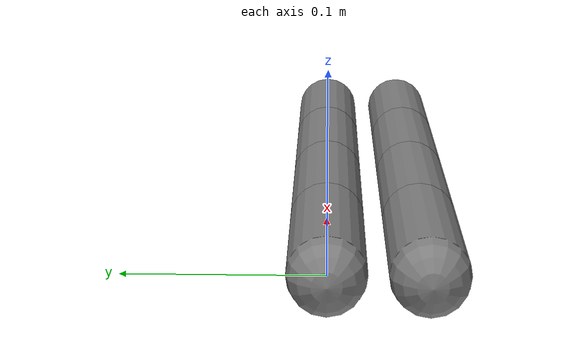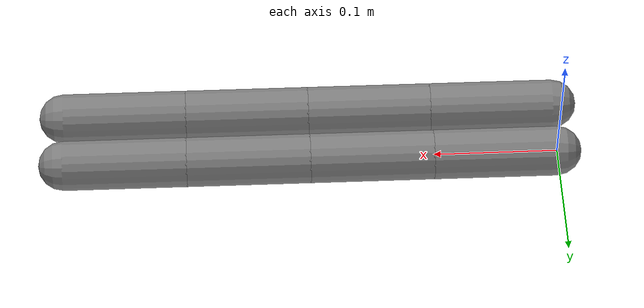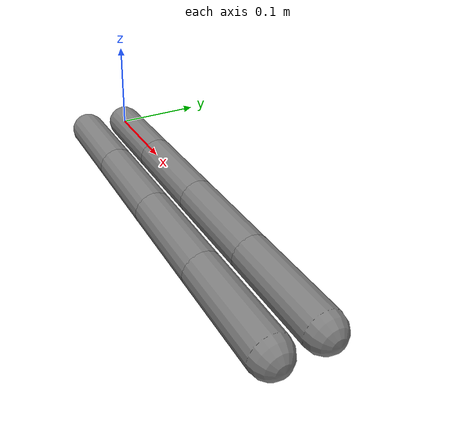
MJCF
<mujoco>
  <visual>
    <global elevation="-20"/>
  </visual>

  <default>
    <joint axis="0 1 0" armature="0.01"/>
    <geom type="capsule" size="0.02"/>
  </default>

  <option integrator="implicitfast">
    <flag gravity="disable"/>
  </option>

  <worldbody>
    <light pos="0 0 2"/>

    <body>
      <joint name="a0"/>
      <geom fromto="0 0 0 .1 0 0"/>
      <body pos=".1 0 0">
        <joint name="b0"/>
        <geom fromto="0 0 0 .1 0 0"/>
        <body pos=".1 0 0">
          <joint name="c0"/>
          <geom fromto="0 0 0 .1 0 0"/>
          <body pos=".1 0 0">
            <joint name="d0"/>
            <geom fromto="0 0 0 .1 0 0"/>
          </body>
        </body>
      </body>
    </body>

    <body pos="0 -0.05 0">
      <joint name="a1"/>
      <geom fromto="0 0 0 .1 0 0"/>
      <body pos=".1 0 0">
        <joint name="b1"/>
        <geom fromto="0 0 0 .1 0 0"/>
        <body pos=".1 0 0">
          <joint name="c1"/>
          <geom fromto="0 0 0 .1 0 0"/>
          <body pos=".1 0 0">
            <joint name="d1"/>
            <geom fromto="0 0 0 .1 0 0"/>
          </body>
        </body>
      </body>
    </body>
  </worldbody>

  <equality>
    <joint joint1="a0" joint2="b0" polycoef="0 .5"/>
    <joint joint1="b0" joint2="c0" polycoef="0 .5"/>
    <joint joint1="c0" joint2="d0" polycoef="0 .5"/>

    <joint joint1="a1" joint2="b1" polycoef="0 .5"/>
    <joint joint1="b1" joint2="c1" polycoef="0 .5"/>
    <joint joint1="c1" joint2="d1" polycoef="0 .5"/>
  </equality>

  <tendon>
    <fixed name="finger0">
      <joint joint="a0" coef="1"/>
      <joint joint="b0" coef=".5"/>
      <joint joint="c0" coef=".25"/>
      <joint joint="d0" coef=".125"/>
    </fixed>

    <fixed name="finger1">
      <joint joint="a1" coef="4"/>
      <joint joint="b1" coef="2"/>
      <joint joint="c1" coef="1"/>
      <joint joint="d1" coef="0.5"/>
    </fixed>
  </tendon>

  <actuator>
    <position name="finger0" tendon="finger0" dampratio="1" kp="128" ctrlrange="-1 1"/>
    <!-- transmission increased by 4: reduce kp by 16 -->
    <position name="finger1" tendon="finger1" dampratio="1" kp="8"   ctrlrange="-4 4"/>
  </actuator>
</mujoco>
